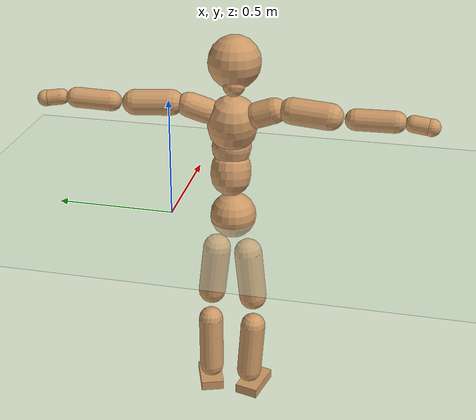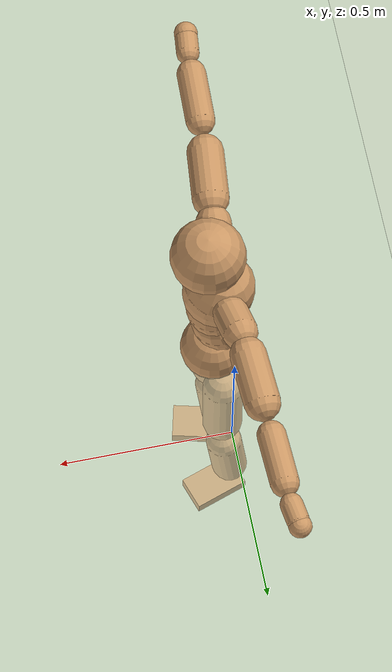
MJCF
<mujoco model="humanoid">
  <compiler coordinate="local" angle="radian"/>
  <default>
    <joint damping="0.0" armature="0.01" stiffness="0.0" limited="true"/>
    <geom conaffinity="1" condim="3" contype="7" margin="0.001" rgba="0.8 0.6 .4 1"/>
  </default>
  <asset>
    <texture type="skybox" builtin="gradient" rgb1=".4 .5 .6" rgb2="0 0 0" width="100" height="100"/>
    <texture builtin="flat" height="1278" mark="cross" markrgb="1 1 1" name="texgeom" random="0.01" rgb1="0.8 0.6 0.4" rgb2="0.8 0.6 0.4" type="cube" width="127"/>
    <texture builtin="checker" height="100" name="texplane" rgb1="0 0 0" rgb2="0.8 0.8 0.8" type="2d" width="100"/>
    <material name="MatPlane" reflectance="0.5" shininess="1" specular="1" texrepeat="60 60" texture="texplane"/>
    <material name="geom" texture="texgeom" texuniform="true"/>
  </asset>
  <worldbody>
    <light cutoff="100" diffuse="1 1 1" dir="-0 0 -1.3" directional="true" exponent="1" pos="0 0 1.3" specular=".1 .1 .1"/>
    <geom conaffinity="1" condim="3" name="floor" pos="0 0 0" rgba="0.8 0.9 0.8 1" size="100 100 .2" type="plane" material="MatPlane"/>
    <body name="Pelvis" pos="0.0001 -0.2658 0.0193">
      <freejoint name="Pelvis"/>
      <geom type="sphere" contype="1" conaffinity="1" density="500" size="0.0962" pos="0.0000 0.0000 0.0000" name="Pelvis"/>
      <body name="L_Hip" pos="-0.0187 0.0582 -0.084">
        <joint name="L_Hip_x" type="hinge" pos="0 0 0" axis="1 0 0" stiffness="800" damping="80" armature="0.02" range="-180.0000 180.0000"/>
        <joint name="L_Hip_y" type="hinge" pos="0 0 0" axis="0 1 0" stiffness="800" damping="80" armature="0.02" range="-180.0000 180.0000"/>
        <joint name="L_Hip_z" type="hinge" pos="0 0 0" axis="0 0 1" stiffness="800" damping="80" armature="0.02" range="-180.0000 180.0000"/>
        <geom type="capsule" contype="1" conaffinity="1" density="500" fromto="0.0013 0.0078 -0.0721 0.0053 0.0311 -0.2882" size="0.0592" name="L_Hip"/>
        <body name="L_Knee" pos="0.0067 0.0389 -0.3603">
          <joint name="L_Knee_x" type="hinge" pos="0 0 0" axis="1 0 0" stiffness="800" damping="80" armature="0.02" range="-180.0000 180.0000"/>
          <joint name="L_Knee_y" type="hinge" pos="0 0 0" axis="0 1 0" stiffness="800" damping="80" armature="0.02" range="-180.0000 180.0000"/>
          <joint name="L_Knee_z" type="hinge" pos="0 0 0" axis="0 0 1" stiffness="800" damping="80" armature="0.02" range="-180.0000 180.0000"/>
          <geom type="capsule" contype="1" conaffinity="1" density="500" fromto="-0.0075 -0.0027 -0.0767 -0.0300 -0.0109 -0.3069" size="0.0537" name="L_Knee"/>
          <body name="L_Ankle" pos="-0.0375 -0.0136 -0.3836">
            <joint name="L_Ankle_x" type="hinge" pos="0 0 0" axis="1 0 0" stiffness="800" damping="80" armature="0.02" range="-180.0000 180.0000"/>
            <joint name="L_Ankle_y" type="hinge" pos="0 0 0" axis="0 1 0" stiffness="800" damping="80" armature="0.02" range="-180.0000 180.0000"/>
            <joint name="L_Ankle_z" type="hinge" pos="0 0 0" axis="0 0 1" stiffness="800" damping="80" armature="0.02" range="-180.0000 180.0000"/>
            <geom type="box" contype="1" conaffinity="1" density="500" pos="0.0583 0.0199 -0.0283" size="0.0825 0.0504 0.0214" quat="0.9864 0.0000 0.0000 0.1641" name="L_Ankle"/>
            <body name="L_Toe" pos="0.1165 0.0399 -0.0565">
              <joint name="L_Toe_x" type="hinge" pos="0 0 0" axis="1 0 0" stiffness="500" damping="50" armature="0.02" range="-180.0000 180.0000"/>
              <joint name="L_Toe_y" type="hinge" pos="0 0 0" axis="0 1 0" stiffness="500" damping="50" armature="0.02" range="-180.0000 180.0000"/>
              <joint name="L_Toe_z" type="hinge" pos="0 0 0" axis="0 0 1" stiffness="500" damping="50" armature="0.02" range="-180.0000 180.0000"/>
              <geom type="box" contype="1" conaffinity="1" density="500" pos="0.0000 0.0000 0.0286" size="0.001 0.0024 0.0011" quat="0.9856 0.0000 0.0000 0.1690" name="L_Toe"/>
            </body>
          </body>
        </body>
      </body>
      <body name="R_Hip" pos="-0.0153 -0.0603 -0.0919">
        <joint name="R_Hip_x" type="hinge" pos="0 0 0" axis="1 0 0" stiffness="800" damping="80" armature="0.02" range="-180.0000 180.0000"/>
        <joint name="R_Hip_y" type="hinge" pos="0 0 0" axis="0 1 0" stiffness="800" damping="80" armature="0.02" range="-180.0000 180.0000"/>
        <joint name="R_Hip_z" type="hinge" pos="0 0 0" axis="0 0 1" stiffness="800" damping="80" armature="0.02" range="-180.0000 180.0000"/>
        <geom type="capsule" contype="1" conaffinity="1" density="500" fromto="-0.0007 -0.0080 -0.0715 -0.0027 -0.0322 -0.2861" size="0.059" name="R_Hip"/>
        <body name="R_Knee" pos="-0.0034 -0.0402 -0.3576">
          <joint name="R_Knee_x" type="hinge" pos="0 0 0" axis="1 0 0" stiffness="800" damping="80" armature="0.02" range="-180.0000 180.0000"/>
          <joint name="R_Knee_y" type="hinge" pos="0 0 0" axis="0 1 0" stiffness="800" damping="80" armature="0.02" range="-180.0000 180.0000"/>
          <joint name="R_Knee_z" type="hinge" pos="0 0 0" axis="0 0 1" stiffness="800" damping="80" armature="0.02" range="-180.0000 180.0000"/>
          <geom type="capsule" contype="1" conaffinity="1" density="500" fromto="-0.0069 0.0035 -0.0757 -0.0274 0.0142 -0.3027" size="0.0542" name="R_Knee"/>
          <body name="R_Ankle" pos="-0.0343 0.0177 -0.3784">
            <joint name="R_Ankle_x" type="hinge" pos="0 0 0" axis="1 0 0" stiffness="800" damping="80" armature="0.02" range="-180.0000 180.0000"/>
            <joint name="R_Ankle_y" type="hinge" pos="0 0 0" axis="0 1 0" stiffness="800" damping="80" armature="0.02" range="-180.0000 180.0000"/>
            <joint name="R_Ankle_z" type="hinge" pos="0 0 0" axis="0 0 1" stiffness="800" damping="80" armature="0.02" range="-180.0000 180.0000"/>
            <geom type="box" contype="1" conaffinity="1" density="500" pos="0.0623 -0.0152 -0.0295" size="0.0865 0.0504 0.0215" quat="0.9929 0.0000 0.0000 -0.1191" name="R_Ankle"/>
            <body name="R_Toe" pos="0.1246 -0.0303 -0.0591">
              <joint name="R_Toe_x" type="hinge" pos="0 0 0" axis="1 0 0" stiffness="500" damping="50" armature="0.02" range="-180.0000 180.0000"/>
              <joint name="R_Toe_y" type="hinge" pos="0 0 0" axis="0 1 0" stiffness="500" damping="50" armature="0.02" range="-180.0000 180.0000"/>
              <joint name="R_Toe_z" type="hinge" pos="0 0 0" axis="0 0 1" stiffness="500" damping="50" armature="0.02" range="-180.0000 180.0000"/>
              <geom type="box" contype="1" conaffinity="1" density="500" pos="0.0000 0.0000 0.0312" size="0.0011 0.0025 0.0012" quat="0.9940 0.0000 0.0000 -0.1098" name="R_Toe"/>
            </body>
          </body>
        </body>
      </body>
      <body name="Torso" pos="-0.0326 0.0039 0.1273">
        <joint name="Torso_x" type="hinge" pos="0 0 0" axis="1 0 0" stiffness="1000" damping="100" armature="0.02" range="-180.0000 180.0000"/>
        <joint name="Torso_y" type="hinge" pos="0 0 0" axis="0 1 0" stiffness="1000" damping="100" armature="0.02" range="-180.0000 180.0000"/>
        <joint name="Torso_z" type="hinge" pos="0 0 0" axis="0 0 1" stiffness="1000" damping="100" armature="0.02" range="-180.0000 180.0000"/>
        <geom type="capsule" contype="1" conaffinity="1" density="500" fromto="0.0198 0.0034 0.0898 0.0132 0.0023 0.0599" size="0.0825" name="Torso"/>
        <body name="Spine" pos="0.033 0.0057 0.1497">
          <joint name="Spine_x" type="hinge" pos="0 0 0" axis="1 0 0" stiffness="1000" damping="100" armature="0.02" range="-180.0000 180.0000"/>
          <joint name="Spine_y" type="hinge" pos="0 0 0" axis="0 1 0" stiffness="1000" damping="100" armature="0.02" range="-180.0000 180.0000"/>
          <joint name="Spine_z" type="hinge" pos="0 0 0" axis="0 0 1" stiffness="1000" damping="100" armature="0.02" range="-180.0000 180.0000"/>
          <geom type="capsule" contype="1" conaffinity="1" density="500" fromto="0.0023 -0.0017 0.0364 0.0015 -0.0011 0.0243" size="0.0804" name="Spine"/>
          <body name="Chest" pos="0.0038 -0.0028 0.0607">
            <joint name="Chest_x" type="hinge" pos="0 0 0" axis="1 0 0" stiffness="1000" damping="100" armature="0.02" range="-180.0000 180.0000"/>
            <joint name="Chest_y" type="hinge" pos="0 0 0" axis="0 1 0" stiffness="1000" damping="100" armature="0.02" range="-180.0000 180.0000"/>
            <joint name="Chest_z" type="hinge" pos="0 0 0" axis="0 0 1" stiffness="1000" damping="100" armature="0.02" range="-180.0000 180.0000"/>
            <geom type="capsule" contype="1" conaffinity="1" density="500" fromto="-0.0175 -0.0055 0.0887 -0.0117 -0.0036 0.0591" size="0.1008" name="Chest"/>
            <body name="Neck" pos="-0.0374 -0.0131 0.2168">
              <joint name="Neck_x" type="hinge" pos="0 0 0" axis="1 0 0" stiffness="500" damping="50" armature="0.02" range="-180.0000 180.0000"/>
              <joint name="Neck_y" type="hinge" pos="0 0 0" axis="0 1 0" stiffness="500" damping="50" armature="0.02" range="-180.0000 180.0000"/>
              <joint name="Neck_z" type="hinge" pos="0 0 0" axis="0 0 1" stiffness="500" damping="50" armature="0.02" range="-180.0000 180.0000"/>
              <geom type="capsule" contype="1" conaffinity="1" density="500" fromto="0.0111 0.0018 0.0194 0.0444 0.0072 0.0774" size="0.0455" name="Neck"/>
              <body name="Head" pos="0.0556 0.009 0.0968">
                <joint name="Head_x" type="hinge" pos="0 0 0" axis="1 0 0" stiffness="500" damping="50" armature="0.02" range="-180.0000 180.0000"/>
                <joint name="Head_y" type="hinge" pos="0 0 0" axis="0 1 0" stiffness="500" damping="50" armature="0.02" range="-180.0000 180.0000"/>
                <joint name="Head_z" type="hinge" pos="0 0 0" axis="0 0 1" stiffness="500" damping="50" armature="0.02" range="-180.0000 180.0000"/>
                <geom type="sphere" contype="1" conaffinity="1" density="500" size="0.1060" pos="0.0000 0.0000 0.0000" name="Head"/>
              </body>
            </body>
            <body name="L_Thorax" pos="-0.0235 0.0693 0.1133">
              <joint name="L_Thorax_x" type="hinge" pos="0 0 0" axis="1 0 0" stiffness="500" damping="50" armature="0.02" range="-180.0000 180.0000"/>
              <joint name="L_Thorax_y" type="hinge" pos="0 0 0" axis="0 1 0" stiffness="500" damping="50" armature="0.02" range="-180.0000 180.0000"/>
              <joint name="L_Thorax_z" type="hinge" pos="0 0 0" axis="0 0 1" stiffness="500" damping="50" armature="0.02" range="-180.0000 180.0000"/>
              <geom type="capsule" contype="1" conaffinity="1" density="500" fromto="-0.0038 0.0238 0.0084 -0.0154 0.0953 0.0336" size="0.0504" name="L_Thorax"/>
              <body name="L_Shoulder" pos="-0.0192 0.1191 0.042">
                <joint name="L_Shoulder_x" type="hinge" pos="0 0 0" axis="1 0 0" stiffness="500" damping="50" armature="0.02" range="-720.0000 720.0000"/>
                <joint name="L_Shoulder_y" type="hinge" pos="0 0 0" axis="0 1 0" stiffness="500" damping="50" armature="0.02" range="-720.0000 720.0000"/>
                <joint name="L_Shoulder_z" type="hinge" pos="0 0 0" axis="0 0 1" stiffness="500" damping="50" armature="0.02" range="-720.0000 720.0000"/>
                <geom type="capsule" contype="1" conaffinity="1" density="500" fromto="-0.0032 0.0480 -0.0023 -0.0127 0.1921 -0.0093" size="0.0517" name="L_Shoulder"/>
                <body name="L_Elbow" pos="-0.0158 0.2402 -0.0116">
                  <joint name="L_Elbow_x" type="hinge" pos="0 0 0" axis="1 0 0" stiffness="500" damping="50" armature="0.02" range="-720.0000 720.0000"/>
                  <joint name="L_Elbow_y" type="hinge" pos="0 0 0" axis="0 1 0" stiffness="500" damping="50" armature="0.02" range="-720.0000 720.0000"/>
                  <joint name="L_Elbow_z" type="hinge" pos="0 0 0" axis="0 0 1" stiffness="500" damping="50" armature="0.02" range="-720.0000 720.0000"/>
                  <geom type="capsule" contype="1" conaffinity="1" density="500" fromto="-0.0019 0.0480 0.0019 -0.0075 0.1920 0.0075" size="0.0409" name="L_Elbow"/>
                  <body name="L_Wrist" pos="-0.0094 0.24 0.0094">
                    <joint name="L_Wrist_x" type="hinge" pos="0 0 0" axis="1 0 0" stiffness="300" damping="30" armature="0.02" range="-180.0000 180.0000"/>
                    <joint name="L_Wrist_y" type="hinge" pos="0 0 0" axis="0 1 0" stiffness="300" damping="30" armature="0.02" range="-180.0000 180.0000"/>
                    <joint name="L_Wrist_z" type="hinge" pos="0 0 0" axis="0 0 1" stiffness="300" damping="30" armature="0.02" range="-180.0000 180.0000"/>
                    <geom type="capsule" contype="1" conaffinity="1" density="500" fromto="-0.0028 0.0158 -0.0019 -0.0111 0.0633 -0.0078" size="0.0319" name="L_Wrist"/>
                    <body name="L_Hand" pos="-0.0139 0.0791 -0.0097">
                      <joint name="L_Hand_x" type="hinge" pos="0 0 0" axis="1 0 0" stiffness="300" damping="30" armature="0.02" range="-180.0000 180.0000"/>
                      <joint name="L_Hand_y" type="hinge" pos="0 0 0" axis="0 1 0" stiffness="300" damping="30" armature="0.02" range="-180.0000 180.0000"/>
                      <joint name="L_Hand_z" type="hinge" pos="0 0 0" axis="0 0 1" stiffness="300" damping="30" armature="0.02" range="-180.0000 180.0000"/>
                      <geom type="sphere" contype="1" conaffinity="1" density="500" size="0.0328" pos="0.0000 0.0000 0.0000" name="L_Hand"/>
                    </body>
                  </body>
                </body>
              </body>
            </body>
            <body name="R_Thorax" pos="-0.0268 -0.0836 0.1131">
              <joint name="R_Thorax_x" type="hinge" pos="0 0 0" axis="1 0 0" stiffness="500" damping="50" armature="0.02" range="-180.0000 180.0000"/>
              <joint name="R_Thorax_y" type="hinge" pos="0 0 0" axis="0 1 0" stiffness="500" damping="50" armature="0.02" range="-180.0000 180.0000"/>
              <joint name="R_Thorax_z" type="hinge" pos="0 0 0" axis="0 0 1" stiffness="500" damping="50" armature="0.02" range="-180.0000 180.0000"/>
              <geom type="capsule" contype="1" conaffinity="1" density="500" fromto="-0.0017 -0.0224 0.0086 -0.0067 -0.0896 0.0343" size="0.0511" name="R_Thorax"/>
              <body name="R_Shoulder" pos="-0.0084 -0.112 0.0429">
                <joint name="R_Shoulder_x" type="hinge" pos="0 0 0" axis="1 0 0" stiffness="500" damping="50" armature="0.02" range="-720.0000 720.0000"/>
                <joint name="R_Shoulder_y" type="hinge" pos="0 0 0" axis="0 1 0" stiffness="500" damping="50" armature="0.02" range="-720.0000 720.0000"/>
                <joint name="R_Shoulder_z" type="hinge" pos="0 0 0" axis="0 0 1" stiffness="500" damping="50" armature="0.02" range="-720.0000 720.0000"/>
                <geom type="capsule" contype="1" conaffinity="1" density="500" fromto="-0.0049 -0.0488 -0.0020 -0.0197 -0.1953 -0.0079" size="0.0531" name="R_Shoulder"/>
                <body name="R_Elbow" pos="-0.0246 -0.2441 -0.0098">
                  <joint name="R_Elbow_x" type="hinge" pos="0 0 0" axis="1 0 0" stiffness="500" damping="50" armature="0.02" range="-720.0000 720.0000"/>
                  <joint name="R_Elbow_y" type="hinge" pos="0 0 0" axis="0 1 0" stiffness="500" damping="50" armature="0.02" range="-720.0000 720.0000"/>
                  <joint name="R_Elbow_z" type="hinge" pos="0 0 0" axis="0 0 1" stiffness="500" damping="50" armature="0.02" range="-720.0000 720.0000"/>
                  <geom type="capsule" contype="1" conaffinity="1" density="500" fromto="-0.0014 -0.0495 0.0014 -0.0056 -0.1982 0.0054" size="0.0422" name="R_Elbow"/>
                  <body name="R_Wrist" pos="-0.007 -0.2477 0.0068">
                    <joint name="R_Wrist_x" type="hinge" pos="0 0 0" axis="1 0 0" stiffness="300" damping="30" armature="0.02" range="-180.0000 180.0000"/>
                    <joint name="R_Wrist_y" type="hinge" pos="0 0 0" axis="0 1 0" stiffness="300" damping="30" armature="0.02" range="-180.0000 180.0000"/>
                    <joint name="R_Wrist_z" type="hinge" pos="0 0 0" axis="0 0 1" stiffness="300" damping="30" armature="0.02" range="-180.0000 180.0000"/>
                    <geom type="capsule" contype="1" conaffinity="1" density="500" fromto="-0.0018 -0.0166 -0.0016 -0.0072 -0.0665 -0.0063" size="0.0332" name="R_Wrist"/>
                    <body name="R_Hand" pos="-0.009 -0.0832 -0.0079">
                      <joint name="R_Hand_x" type="hinge" pos="0 0 0" axis="1 0 0" stiffness="300" damping="30" armature="0.02" range="-180.0000 180.0000"/>
                      <joint name="R_Hand_y" type="hinge" pos="0 0 0" axis="0 1 0" stiffness="300" damping="30" armature="0.02" range="-180.0000 180.0000"/>
                      <joint name="R_Hand_z" type="hinge" pos="0 0 0" axis="0 0 1" stiffness="300" damping="30" armature="0.02" range="-180.0000 180.0000"/>
                      <geom type="sphere" contype="1" conaffinity="1" density="500" size="0.0340" pos="0.0000 0.0000 0.0000" name="R_Hand"/>
                    </body>
                  </body>
                </body>
              </body>
            </body>
          </body>
        </body>
      </body>
    </body>
  </worldbody>
  <actuator>
    <motor name="L_Hip_x" joint="L_Hip_x" gear="500"/>
    <motor name="L_Hip_y" joint="L_Hip_y" gear="500"/>
    <motor name="L_Hip_z" joint="L_Hip_z" gear="500"/>
    <motor name="L_Knee_x" joint="L_Knee_x" gear="500"/>
    <motor name="L_Knee_y" joint="L_Knee_y" gear="500"/>
    <motor name="L_Knee_z" joint="L_Knee_z" gear="500"/>
    <motor name="L_Ankle_x" joint="L_Ankle_x" gear="500"/>
    <motor name="L_Ankle_y" joint="L_Ankle_y" gear="500"/>
    <motor name="L_Ankle_z" joint="L_Ankle_z" gear="500"/>
    <motor name="L_Toe_x" joint="L_Toe_x" gear="500"/>
    <motor name="L_Toe_y" joint="L_Toe_y" gear="500"/>
    <motor name="L_Toe_z" joint="L_Toe_z" gear="500"/>
    <motor name="R_Hip_x" joint="R_Hip_x" gear="500"/>
    <motor name="R_Hip_y" joint="R_Hip_y" gear="500"/>
    <motor name="R_Hip_z" joint="R_Hip_z" gear="500"/>
    <motor name="R_Knee_x" joint="R_Knee_x" gear="500"/>
    <motor name="R_Knee_y" joint="R_Knee_y" gear="500"/>
    <motor name="R_Knee_z" joint="R_Knee_z" gear="500"/>
    <motor name="R_Ankle_x" joint="R_Ankle_x" gear="500"/>
    <motor name="R_Ankle_y" joint="R_Ankle_y" gear="500"/>
    <motor name="R_Ankle_z" joint="R_Ankle_z" gear="500"/>
    <motor name="R_Toe_x" joint="R_Toe_x" gear="500"/>
    <motor name="R_Toe_y" joint="R_Toe_y" gear="500"/>
    <motor name="R_Toe_z" joint="R_Toe_z" gear="500"/>
    <motor name="Torso_x" joint="Torso_x" gear="500"/>
    <motor name="Torso_y" joint="Torso_y" gear="500"/>
    <motor name="Torso_z" joint="Torso_z" gear="500"/>
    <motor name="Spine_x" joint="Spine_x" gear="500"/>
    <motor name="Spine_y" joint="Spine_y" gear="500"/>
    <motor name="Spine_z" joint="Spine_z" gear="500"/>
    <motor name="Chest_x" joint="Chest_x" gear="500"/>
    <motor name="Chest_y" joint="Chest_y" gear="500"/>
    <motor name="Chest_z" joint="Chest_z" gear="500"/>
    <motor name="Neck_x" joint="Neck_x" gear="500"/>
    <motor name="Neck_y" joint="Neck_y" gear="500"/>
    <motor name="Neck_z" joint="Neck_z" gear="500"/>
    <motor name="Head_x" joint="Head_x" gear="500"/>
    <motor name="Head_y" joint="Head_y" gear="500"/>
    <motor name="Head_z" joint="Head_z" gear="500"/>
    <motor name="L_Thorax_x" joint="L_Thorax_x" gear="500"/>
    <motor name="L_Thorax_y" joint="L_Thorax_y" gear="500"/>
    <motor name="L_Thorax_z" joint="L_Thorax_z" gear="500"/>
    <motor name="L_Shoulder_x" joint="L_Shoulder_x" gear="500"/>
    <motor name="L_Shoulder_y" joint="L_Shoulder_y" gear="500"/>
    <motor name="L_Shoulder_z" joint="L_Shoulder_z" gear="500"/>
    <motor name="L_Elbow_x" joint="L_Elbow_x" gear="500"/>
    <motor name="L_Elbow_y" joint="L_Elbow_y" gear="500"/>
    <motor name="L_Elbow_z" joint="L_Elbow_z" gear="500"/>
    <motor name="L_Wrist_x" joint="L_Wrist_x" gear="500"/>
    <motor name="L_Wrist_y" joint="L_Wrist_y" gear="500"/>
    <motor name="L_Wrist_z" joint="L_Wrist_z" gear="500"/>
    <motor name="L_Hand_x" joint="L_Hand_x" gear="500"/>
    <motor name="L_Hand_y" joint="L_Hand_y" gear="500"/>
    <motor name="L_Hand_z" joint="L_Hand_z" gear="500"/>
    <motor name="R_Thorax_x" joint="R_Thorax_x" gear="500"/>
    <motor name="R_Thorax_y" joint="R_Thorax_y" gear="500"/>
    <motor name="R_Thorax_z" joint="R_Thorax_z" gear="500"/>
    <motor name="R_Shoulder_x" joint="R_Shoulder_x" gear="500"/>
    <motor name="R_Shoulder_y" joint="R_Shoulder_y" gear="500"/>
    <motor name="R_Shoulder_z" joint="R_Shoulder_z" gear="500"/>
    <motor name="R_Elbow_x" joint="R_Elbow_x" gear="500"/>
    <motor name="R_Elbow_y" joint="R_Elbow_y" gear="500"/>
    <motor name="R_Elbow_z" joint="R_Elbow_z" gear="500"/>
    <motor name="R_Wrist_x" joint="R_Wrist_x" gear="500"/>
    <motor name="R_Wrist_y" joint="R_Wrist_y" gear="500"/>
    <motor name="R_Wrist_z" joint="R_Wrist_z" gear="500"/>
    <motor name="R_Hand_x" joint="R_Hand_x" gear="500"/>
    <motor name="R_Hand_y" joint="R_Hand_y" gear="500"/>
    <motor name="R_Hand_z" joint="R_Hand_z" gear="500"/>
  </actuator>
  <contact>
    <exclude body1="Torso" body2="Chest"/>
    <exclude body1="Head" body2="Chest"/>
    <exclude body1="R_Knee" body2="R_Toe"/>
    <exclude body1="R_Knee" body2="L_Ankle"/>
    <exclude body1="R_Knee" body2="L_Toe"/>
    <exclude body1="L_Knee" body2="L_Toe"/>
    <exclude body1="L_Knee" body2="R_Ankle"/>
    <exclude body1="L_Knee" body2="R_Toe"/>
    <exclude body1="L_Shoulder" body2="Chest"/>
    <exclude body1="R_Shoulder" body2="Chest"/>
  </contact>
  <sensor/>
  <size njmax="700" nconmax="700"/>
</mujoco>
